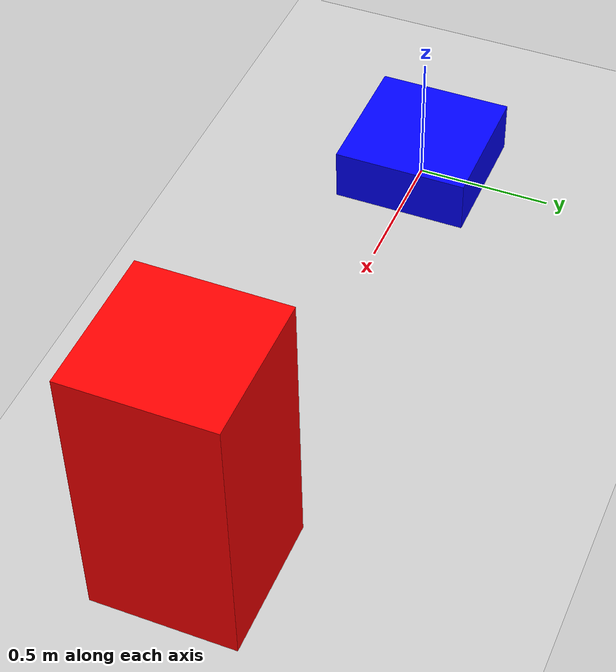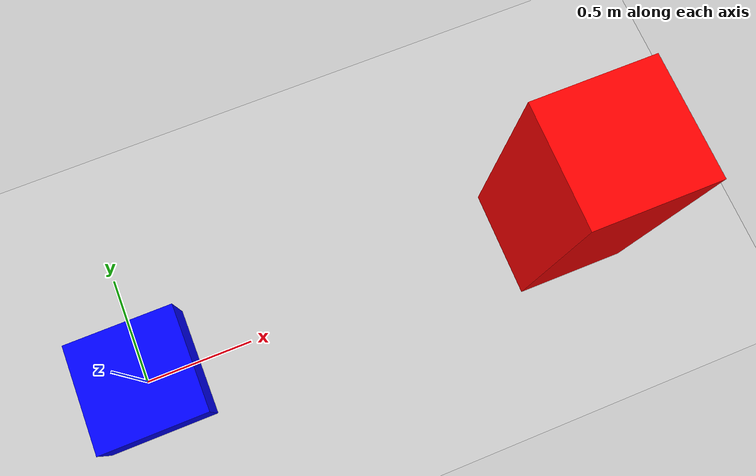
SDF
<?xml version="1.0"?>
<sdf version="1.9">
  <world name="stable_lidar_world">

    <!-- Robot with lidar built directly into the world -->
    <model name="lidar_robot">
      <pose>0 0 0.1 0 0 0</pose>
      <static>false</static>

      <link name="base_link">
        <inertial>
          <mass>1.0</mass>
          <inertia>
            <ixx>0.1</ixx>
            <iyy>0.1</iyy>
            <izz>0.1</izz>
          </inertia>
        </inertial>

        <visual name="visual">
          <geometry>
            <box>
              <size>0.5 0.5 0.2</size>
            </box>
          </geometry>
          <material>
            <diffuse>0 0 1 1</diffuse>
          </material>
        </visual>

        <collision name="collision">
          <geometry>
            <box>
              <size>0.5 0.5 0.2</size>
            </box>
          </geometry>
        </collision>

        <!-- 2D Lidar sensor -->
        <sensor name="lidar" type="ray">
          <pose>0 0 0.15 0 0 0</pose>
          <update_rate>10</update_rate>
          <ray>
            <scan>
              <horizontal>
                <samples>360</samples>
                <resolution>1</resolution>
                <min_angle>-3.141592</min_angle>
                <max_angle>3.141592</max_angle>
              </horizontal>
            </scan>
            <range>
              <min>0.1</min>
              <max>10.0</max>
              <resolution>0.01</resolution>
            </range>
          </ray>
          <always_on>1</always_on>
          <visualize>true</visualize>
        </sensor>
      </link>
    </model>

    <!-- Target box -->
    <model name="target_box">
      <pose>2 0 0.5 0 0 0</pose>
      <static>true</static>
      <link name="link">
        <visual name="visual">
          <geometry>
            <box>
              <size>0.5 0.5 1</size>
            </box>
          </geometry>
          <material>
            <diffuse>1 0 0 1</diffuse>
          </material>
        </visual>
        <collision name="collision">
          <geometry>
            <box>
              <size>0.5 0.5 1</size>
            </box>
          </geometry>
        </collision>
      </link>
    </model>

    <!-- Ground plane -->
    <model name="ground_plane">
      <static>true</static>
      <link name="link">
        <collision name="collision">
          <geometry>
            <plane>
              <normal>0 0 1</normal>
              <size>100 100</size>
            </plane>
          </geometry>
        </collision>
        <visual name="visual">
          <geometry>
            <plane>
              <normal>0 0 1</normal>
              <size>100 100</size>
            </plane>
          </geometry>
          <material>
            <diffuse>0.8 0.8 0.8 1</diffuse>
          </material>
        </visual>
      </link>
    </model>

  </world>
</sdf>
